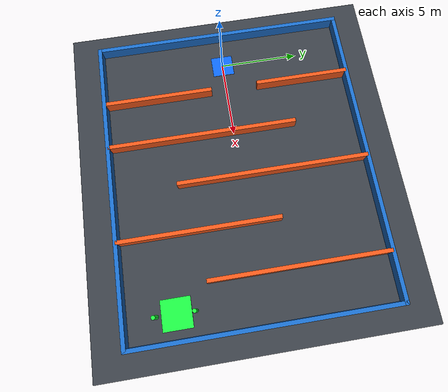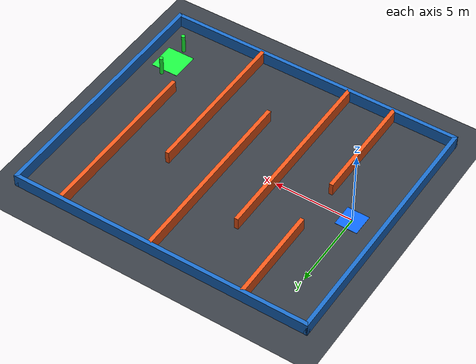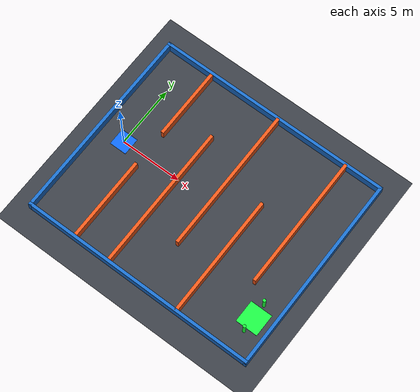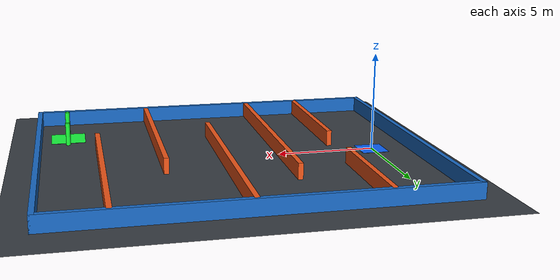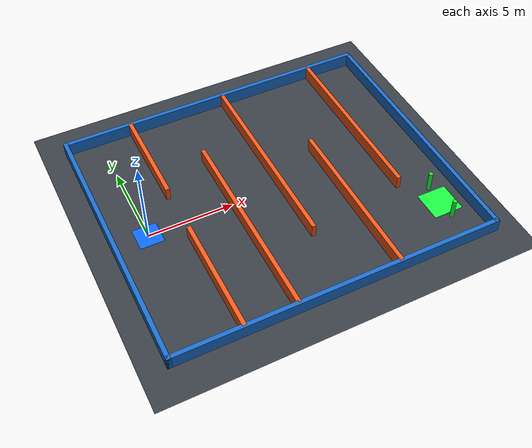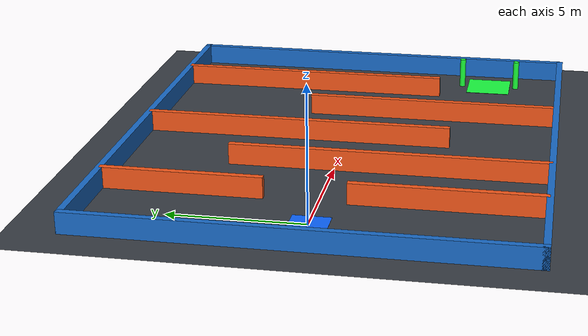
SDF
<?xml version="1.0" ?>
<sdf version="1.9">
  <world name="puzzle">
    <physics name="10ms" type="ignored">
      <max_step_size>0.01</max_step_size>
      <real_time_factor>1.0</real_time_factor>
    </physics>

    <plugin
      filename="gz-sim-physics-system"
      name="gz::sim::systems::Physics"/>
    <plugin
      filename="gz-sim-user-commands-system"
      name="gz::sim::systems::UserCommands"/>
    <plugin
      filename="gz-sim-scene-broadcaster-system"
      name="gz::sim::systems::SceneBroadcaster"/>
    <plugin
      filename="gz-sim-sensors-system"
      name="gz::sim::systems::Sensors">
      <render_engine>ogre2</render_engine>
    </plugin>

    <light type="directional" name="sun">
      <cast_shadows>true</cast_shadows>
      <pose>0 0 15 0 0 0</pose>
      <diffuse>0.85 0.85 0.85 1</diffuse>
      <specular>0.2 0.2 0.2 1</specular>
      <direction>-0.5 0.2 -0.9</direction>
    </light>

    <model name="puzzle_floor">
      <static>true</static>
      <pose>7.5 0 0 0 0 0</pose>
      <link name="floor_link">
        <collision name="floor_collision">
          <geometry>
            <plane>
              <normal>0 0 1</normal>
              <size>22 20</size>
            </plane>
          </geometry>
          <surface>
            <friction>
              <ode>
                <mu>1.0</mu>
                <mu2>1.0</mu2>
              </ode>
            </friction>
          </surface>
        </collision>
        <visual name="floor_visual">
          <geometry>
            <plane>
              <normal>0 0 1</normal>
              <size>22 20</size>
            </plane>
          </geometry>
          <material>
            <ambient>0.16 0.18 0.20 1</ambient>
            <diffuse>0.22 0.24 0.27 1</diffuse>
            <specular>0.05 0.05 0.05 1</specular>
          </material>
        </visual>
      </link>
    </model>

    <!-- Blue start pad. It is visual-only so it cannot catch the wheels. -->
    <model name="start_pad">
      <static>true</static>
      <pose>0 0 0.006 0 0 0</pose>
      <link name="start_pad_link">
        <visual name="start_pad_visual">
          <geometry>
            <box>
              <size>1.4 1.4 0.01</size>
            </box>
          </geometry>
          <material>
            <ambient>0.05 0.30 0.95 1</ambient>
            <diffuse>0.05 0.40 1.00 1</diffuse>
            <emissive>0.01 0.04 0.12 1</emissive>
          </material>
        </visual>
      </link>
    </model>

    <!-- Green finish pad in the last corridor. -->
    <model name="finish_pad">
      <static>true</static>
      <pose>15.5 -5.0 0.006 0 0 0</pose>
      <link name="finish_pad_link">
        <visual name="finish_pad_visual">
          <geometry>
            <box>
              <size>1.8 1.8 0.01</size>
            </box>
          </geometry>
          <material>
            <ambient>0.05 0.85 0.20 1</ambient>
            <diffuse>0.10 1.00 0.25 1</diffuse>
            <emissive>0.01 0.10 0.02 1</emissive>
          </material>
        </visual>
      </link>
    </model>

    <!-- Outer boundary and alternating maze dividers. -->
    <model name="maze_walls">
      <static>true</static>
      <link name="walls_link">
        <!-- Outer boundary: x = -2 and x = 17, y = -8 and y = 8. -->
        <collision name="boundary_left_collision">
          <pose>-2 0 0.4 0 0 0</pose>
          <geometry><box><size>0.25 16.25 0.8</size></box></geometry>
        </collision>
        <visual name="boundary_left_visual">
          <pose>-2 0 0.4 0 0 0</pose>
          <geometry><box><size>0.25 16.25 0.8</size></box></geometry>
          <material>
            <ambient>0.08 0.32 0.62 1</ambient>
            <diffuse>0.10 0.42 0.78 1</diffuse>
          </material>
        </visual>

        <collision name="boundary_right_collision">
          <pose>17 0 0.4 0 0 0</pose>
          <geometry><box><size>0.25 16.25 0.8</size></box></geometry>
        </collision>
        <visual name="boundary_right_visual">
          <pose>17 0 0.4 0 0 0</pose>
          <geometry><box><size>0.25 16.25 0.8</size></box></geometry>
          <material>
            <ambient>0.08 0.32 0.62 1</ambient>
            <diffuse>0.10 0.42 0.78 1</diffuse>
          </material>
        </visual>

        <collision name="boundary_top_collision">
          <pose>7.5 8 0.4 0 0 0</pose>
          <geometry><box><size>19.25 0.25 0.8</size></box></geometry>
        </collision>
        <visual name="boundary_top_visual">
          <pose>7.5 8 0.4 0 0 0</pose>
          <geometry><box><size>19.25 0.25 0.8</size></box></geometry>
          <material>
            <ambient>0.08 0.32 0.62 1</ambient>
            <diffuse>0.10 0.42 0.78 1</diffuse>
          </material>
        </visual>

        <collision name="boundary_bottom_collision">
          <pose>7.5 -8 0.4 0 0 0</pose>
          <geometry><box><size>19.25 0.25 0.8</size></box></geometry>
        </collision>
        <visual name="boundary_bottom_visual">
          <pose>7.5 -8 0.4 0 0 0</pose>
          <geometry><box><size>19.25 0.25 0.8</size></box></geometry>
          <material>
            <ambient>0.08 0.32 0.62 1</ambient>
            <diffuse>0.10 0.42 0.78 1</diffuse>
          </material>
        </visual>

        <!-- Divider 1: pass through the central opening. -->
        <collision name="divider_1_lower_collision">
          <pose>2 -4.5 0.4 0 0 0</pose>
          <geometry><box><size>0.25 7.0 0.8</size></box></geometry>
        </collision>
        <visual name="divider_1_lower_visual">
          <pose>2 -4.5 0.4 0 0 0</pose>
          <geometry><box><size>0.25 7.0 0.8</size></box></geometry>
          <material>
            <ambient>0.82 0.24 0.08 1</ambient>
            <diffuse>0.95 0.34 0.10 1</diffuse>
          </material>
        </visual>
        <collision name="divider_1_upper_collision">
          <pose>2 5.0 0.4 0 0 0</pose>
          <geometry><box><size>0.25 6.0 0.8</size></box></geometry>
        </collision>
        <visual name="divider_1_upper_visual">
          <pose>2 5.0 0.4 0 0 0</pose>
          <geometry><box><size>0.25 6.0 0.8</size></box></geometry>
          <material>
            <ambient>0.82 0.24 0.08 1</ambient>
            <diffuse>0.95 0.34 0.10 1</diffuse>
          </material>
        </visual>

        <!-- Divider 2: the only opening is at the north end. -->
        <collision name="divider_2_collision">
          <pose>5 -2.0 0.4 0 0 0</pose>
          <geometry><box><size>0.25 12.0 0.8</size></box></geometry>
        </collision>
        <visual name="divider_2_visual">
          <pose>5 -2.0 0.4 0 0 0</pose>
          <geometry><box><size>0.25 12.0 0.8</size></box></geometry>
          <material>
            <ambient>0.82 0.24 0.08 1</ambient>
            <diffuse>0.95 0.34 0.10 1</diffuse>
          </material>
        </visual>

        <!-- Divider 3: turn around and find the south opening. -->
        <collision name="divider_3_collision">
          <pose>8 2.0 0.4 0 0 0</pose>
          <geometry><box><size>0.25 12.0 0.8</size></box></geometry>
        </collision>
        <visual name="divider_3_visual">
          <pose>8 2.0 0.4 0 0 0</pose>
          <geometry><box><size>0.25 12.0 0.8</size></box></geometry>
          <material>
            <ambient>0.82 0.24 0.08 1</ambient>
            <diffuse>0.95 0.34 0.10 1</diffuse>
          </material>
        </visual>

        <!-- Divider 4: a second north-side opening. -->
        <collision name="divider_4_collision">
          <pose>11 -3.0 0.4 0 0 0</pose>
          <geometry><box><size>0.25 10.0 0.8</size></box></geometry>
        </collision>
        <visual name="divider_4_visual">
          <pose>11 -3.0 0.4 0 0 0</pose>
          <geometry><box><size>0.25 10.0 0.8</size></box></geometry>
          <material>
            <ambient>0.82 0.24 0.08 1</ambient>
            <diffuse>0.95 0.34 0.10 1</diffuse>
          </material>
        </visual>

        <!-- Divider 5: final south opening leading to the goal. -->
        <collision name="divider_5_collision">
          <pose>14 2.5 0.4 0 0 0</pose>
          <geometry><box><size>0.25 11.0 0.8</size></box></geometry>
        </collision>
        <visual name="divider_5_visual">
          <pose>14 2.5 0.4 0 0 0</pose>
          <geometry><box><size>0.25 11.0 0.8</size></box></geometry>
          <material>
            <ambient>0.82 0.24 0.08 1</ambient>
            <diffuse>0.95 0.34 0.10 1</diffuse>
          </material>
        </visual>
      </link>
    </model>

    <!-- Finish gate: two posts make the goal visible to both camera and lidar. -->
    <model name="finish_gate">
      <static>true</static>
      <link name="finish_gate_link">
        <collision name="finish_post_left_collision">
          <pose>15.5 -6.15 0.6 0 0 0</pose>
          <geometry><cylinder><radius>0.12</radius><length>1.2</length></cylinder></geometry>
        </collision>
        <visual name="finish_post_left_visual">
          <pose>15.5 -6.15 0.6 0 0 0</pose>
          <geometry><cylinder><radius>0.12</radius><length>1.2</length></cylinder></geometry>
          <material>
            <ambient>0.08 0.85 0.18 1</ambient>
            <diffuse>0.10 1.00 0.22 1</diffuse>
          </material>
        </visual>
        <collision name="finish_post_right_collision">
          <pose>15.5 -3.85 0.6 0 0 0</pose>
          <geometry><cylinder><radius>0.12</radius><length>1.2</length></cylinder></geometry>
        </collision>
        <visual name="finish_post_right_visual">
          <pose>15.5 -3.85 0.6 0 0 0</pose>
          <geometry><cylinder><radius>0.12</radius><length>1.2</length></cylinder></geometry>
          <material>
            <ambient>0.08 0.85 0.18 1</ambient>
            <diffuse>0.10 1.00 0.22 1</diffuse>
          </material>
        </visual>
      </link>
    </model>
  </world>
</sdf>
